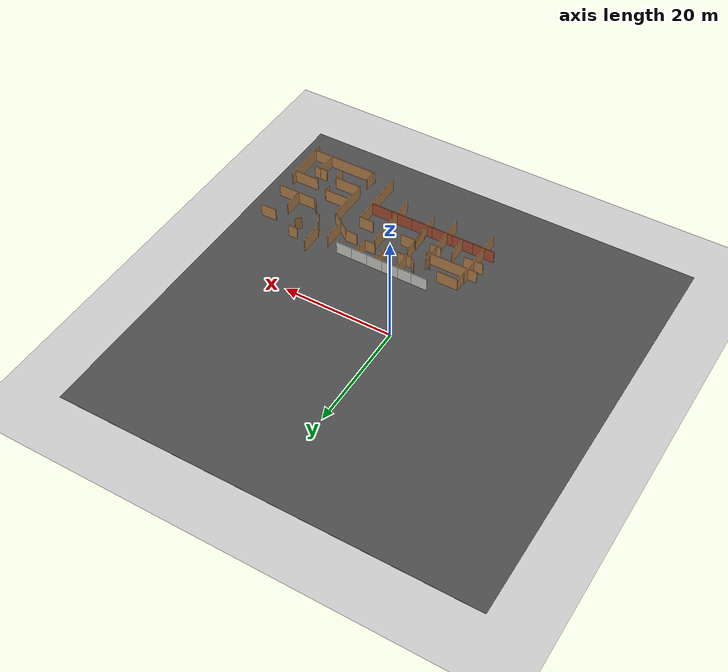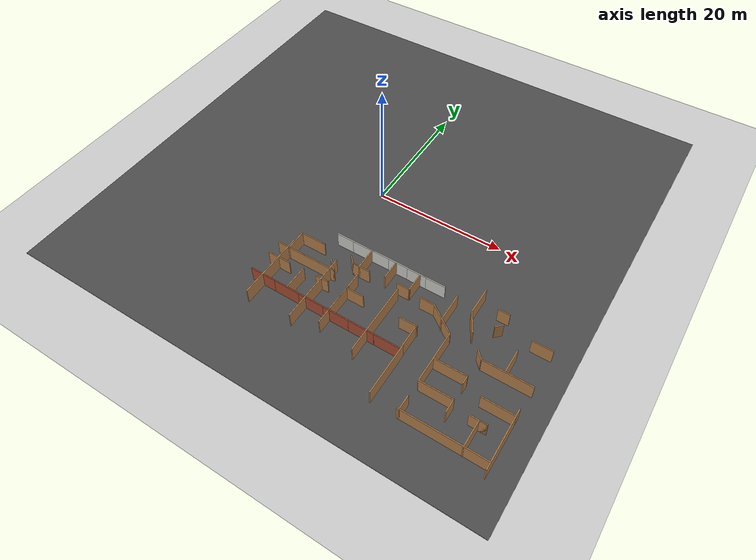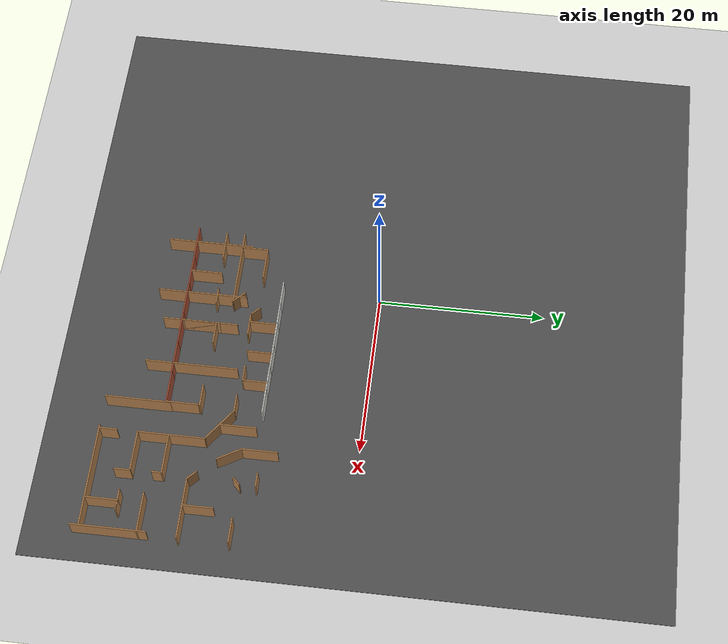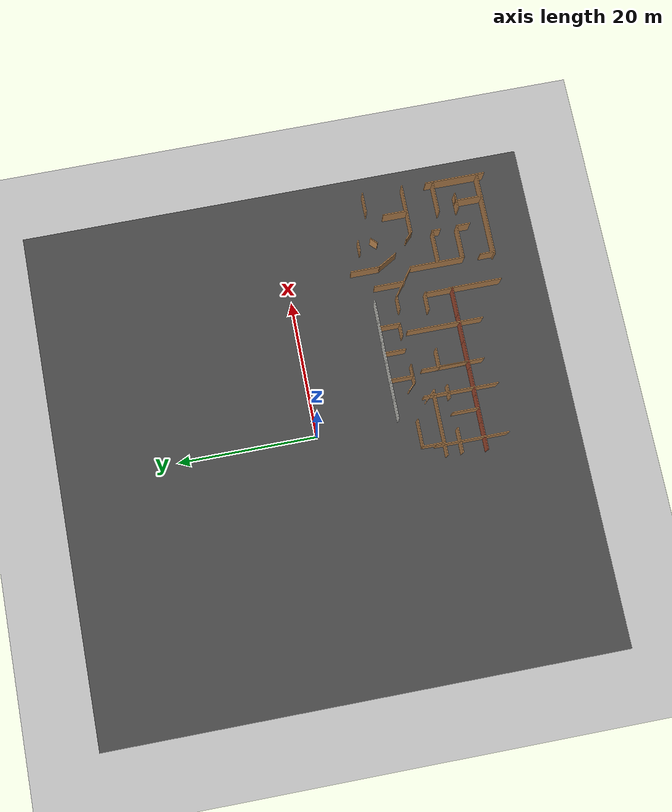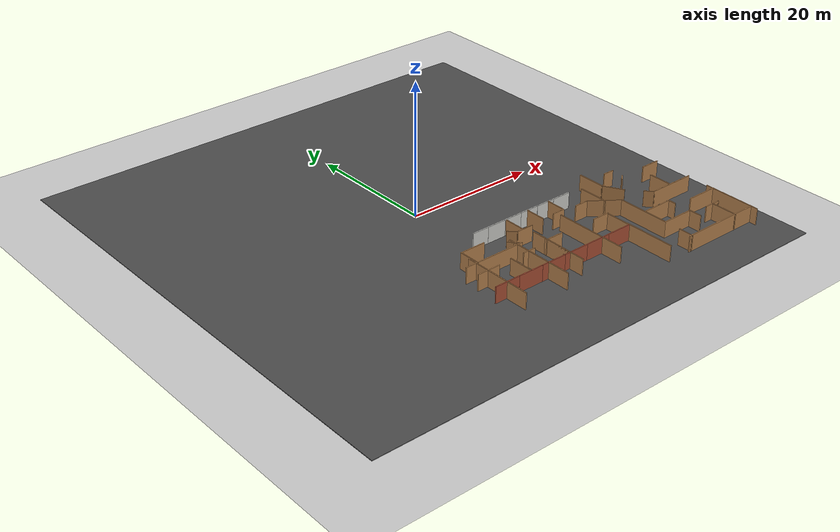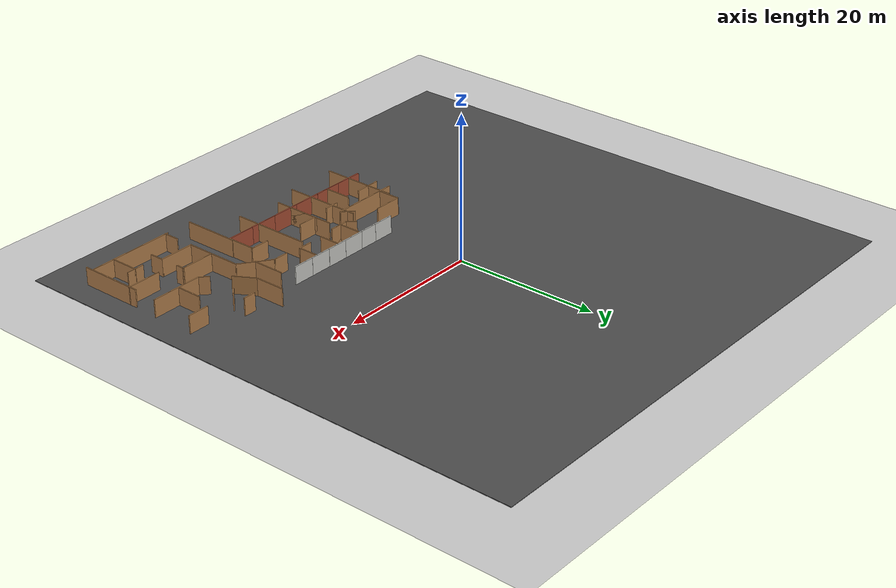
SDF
<sdf version="1.6">
 <world name="default">
  <model name="ground_plane">
   <static>1</static>
   <link name="link">
    <collision name="collision">
     <geometry><plane><normal>0 0 1</normal><size>100 100</size></plane></geometry>
     <surface><friction><ode><mu>100</mu><mu2>50</mu2></ode></friction></surface>
    </collision>
    <visual name="visual">
     <cast_shadows>0</cast_shadows>
     <geometry><plane><normal>0 0 1</normal><size>100 100</size></plane></geometry>
     <material>
      <script><uri>file://media/materials/scripts/gazebo.material</uri><name>Gazebo/Grey</name></script>
     </material>
    </visual>
   </link>
  </model>
  <model name="asphalt_plane">
   <static>1</static>
   <link name="link">
    <collision name="collision"><geometry><box><size>74 74 0.1</size></box></geometry></collision>
    <visual name="visual">
     <cast_shadows>0</cast_shadows>
     <geometry><box><size>74 74 0.1</size></box></geometry>
     <material>
      <script>
       <uri>model://asphalt_plane/materials/scripts</uri>
       <uri>model://asphalt_plane/materials/textures</uri>
       <name>vrc/asphalt</name>
      </script>
     </material>
    </visual>
   </link>
  </model>
  <model name="concrete_wall_6_clone_2">
   <pose>15.9847 -11.7109 0 0 -0 1.57079</pose>
   <link name="Wall_0">
    <collision name="Wall_0_Collision">
     <geometry><box><size>3 0.15 2.5</size></box></geometry>
     <pose>0 0 1.25 0 -0 0</pose>
    </collision>
    <visual name="Wall_0_Visual">
     <pose>0 0 1.25 0 -0 0</pose>
     <geometry><box><size>3 0.15 2.5</size></box></geometry>
     <material>
      <script><uri>file://media/materials/scripts/gazebo.material</uri><name>Gazebo/CeilingTiled</name></script>
      <ambient>1 1 1 1</ambient>
     </material>
     <meta><layer>0</layer></meta>
    </visual>
    <pose>0 0 0 0 -0 1.5708</pose>
   </link>
   <static>1</static>
  </model>
  <model name="concrete_wall_6_clone_3">
   <pose>13.0011 -11.6986 0 0 -0 1.57079</pose>
   <link name="Wall_0">
    <collision name="Wall_0_Collision">
     <geometry><box><size>3 0.15 2.5</size></box></geometry>
     <pose>0 0 1.25 0 -0 0</pose>
    </collision>
    <visual name="Wall_0_Visual">
     <pose>0 0 1.25 0 -0 0</pose>
     <geometry><box><size>3 0.15 2.5</size></box></geometry>
     <material>
      <script><uri>file://media/materials/scripts/gazebo.material</uri><name>Gazebo/CeilingTiled</name></script>
      <ambient>1 1 1 1</ambient>
     </material>
     <meta><layer>0</layer></meta>
    </visual>
    <pose>0 0 0 0 -0 1.5708</pose>
   </link>
   <static>1</static>
  </model>
  <model name="willowgarage_v1_1">
   <pose>-14.3408 -3.86286 0 0 -0 0</pose>
   <link name="Wall_234">
    <collision name="Wall_234_Collision">
     <geometry><box><size>7.75 0.15 2.5</size></box></geometry>
     <pose>0 0 1.25 0 -0 0</pose>
    </collision>
    <visual name="Wall_234_Visual">
     <pose>0 0 1.25 0 -0 0</pose>
     <geometry><box><size>7.75 0.15 2.5</size></box></geometry>
     <material>
      <script><uri>file://media/materials/scripts/gazebo.material</uri><name>Gazebo/Wood</name></script>
      <ambient>1 1 1 1</ambient>
     </material>
     <meta><layer>0</layer></meta>
    </visual>
    <pose>13.7458 -13.5128 0 0 -0 3.14159</pose>
   </link>
   <link name="Wall_235">
    <collision name="Wall_235_Collision">
     <geometry><box><size>3.25 0.15 2.5</size></box></geometry>
     <pose>0 0 1.25 0 -0 0</pose>
    </collision>
    <visual name="Wall_235_Visual">
     <pose>0 0 1.25 0 -0 0</pose>
     <geometry><box><size>3.25 0.15 2.5</size></box></geometry>
     <material>
      <script><uri>file://media/materials/scripts/gazebo.material</uri><name>Gazebo/Wood</name></script>
      <ambient>1 1 1 1</ambient>
     </material>
     <meta><layer>0</layer></meta>
    </visual>
    <pose>9.94576 -11.9628 0 0 -0 1.5708</pose>
   </link>
   <link name="Wall_236">
    <collision name="Wall_236_Collision">
     <geometry><box><size>4 0.15 2.5</size></box></geometry>
     <pose>0 0 1.25 0 -0 0</pose>
    </collision>
    <visual name="Wall_236_Visual">
     <pose>0 0 1.25 0 -0 0</pose>
     <geometry><box><size>4 0.15 2.5</size></box></geometry>
     <material>
      <script><uri>file://media/materials/scripts/gazebo.material</uri><name>Gazebo/Wood</name></script>
      <ambient>1 1 1 1</ambient>
     </material>
     <meta><layer>0</layer></meta>
    </visual>
    <pose>11.8708 -10.4128 0 0 -0 0</pose>
   </link>
   <link name="Wall_238">
    <collision name="Wall_238_Collision">
     <geometry><box><size>2 0.15 2.5</size></box></geometry>
     <pose>0 0 1.25 0 -0 0</pose>
    </collision>
    <visual name="Wall_238_Visual">
     <pose>0 0 1.25 0 -0 0</pose>
     <geometry><box><size>2 0.15 2.5</size></box></geometry>
     <material>
      <script><uri>file://media/materials/scripts/gazebo.material</uri><name>Gazebo/Wood</name></script>
      <ambient>1 1 1 1</ambient>
     </material>
     <meta><layer>0</layer></meta>
    </visual>
    <pose>16.8917 -12.8587 0 0 -0 2.35619</pose>
   </link>
   <link name="Wall_249">
    <collision name="Wall_249_Collision">
     <geometry><box><size>2 0.15 2.5</size></box></geometry>
     <pose>0 0 1.25 0 -0 0</pose>
    </collision>
    <visual name="Wall_249_Visual">
     <pose>0 0 1.25 0 -0 0</pose>
     <geometry><box><size>2 0.15 2.5</size></box></geometry>
     <material>
      <script><uri>file://media/materials/scripts/gazebo.material</uri><name>Gazebo/Wood</name></script>
      <ambient>1 1 1 1</ambient>
     </material>
     <meta><layer>0</layer></meta>
    </visual>
    <pose>9.02075 -13.5128 0 0 -0 3.14159</pose>
   </link>
   <link name="Wall_27">
    <collision name="Wall_27_Collision">
     <geometry><box><size>3.75 0.15 2.5</size></box></geometry>
     <pose>0 0 1.25 0 -0 0</pose>
    </collision>
    <visual name="Wall_27_Visual">
     <pose>0 0 1.25 0 -0 0</pose>
     <geometry><box><size>3.75 0.15 2.5</size></box></geometry>
     <material>
      <script><uri>file://media/materials/scripts/gazebo.material</uri><name>Gazebo/Wood</name></script>
      <ambient>1 1 1 1</ambient>
     </material>
     <meta><layer>0</layer></meta>
    </visual>
    <pose>31.6466 -17.2514 0 0 -0 1.5708</pose>
   </link>
   <link name="Wall_29">
    <collision name="Wall_29_Collision">
     <geometry><box><size>2.75 0.15 2.5</size></box></geometry>
     <pose>0 0 1.25 0 -0 0</pose>
    </collision>
    <visual name="Wall_29_Visual">
     <pose>0 0 1.25 0 -0 0</pose>
     <geometry><box><size>2.75 0.15 2.5</size></box></geometry>
     <material>
      <script><uri>file://media/materials/scripts/gazebo.material</uri><name>Gazebo/Wood</name></script>
      <ambient>1 1 1 1</ambient>
     </material>
     <meta><layer>0</layer></meta>
    </visual>
    <pose>30.4285 -15.2148 0 0 -0 3.14159</pose>
   </link>
   <link name="Wall_31">
    <collision name="Wall_31_Collision">
     <geometry><box><size>11 0.15 2.5</size></box></geometry>
     <pose>0 0 1.25 0 -0 0</pose>
    </collision>
    <visual name="Wall_31_Visual">
     <pose>0 0 1.25 0 -0 0</pose>
     <geometry><box><size>11 0.15 2.5</size></box></geometry>
     <material>
      <script><uri>file://media/materials/scripts/gazebo.material</uri><name>Gazebo/Wood</name></script>
      <ambient>1 1 1 1</ambient>
     </material>
     <meta><layer>0</layer></meta>
    </visual>
    <pose>26.5818 -17.0462 0 0 0 -1.5708</pose>
   </link>
   <link name="Wall_33">
    <collision name="Wall_33_Collision">
     <geometry><box><size>2.75 0.15 2.5</size></box></geometry>
     <pose>0 0 1.25 0 -0 0</pose>
    </collision>
    <visual name="Wall_33_Visual">
     <pose>0 0 1.25 0 -0 0</pose>
     <geometry><box><size>2.75 0.15 2.5</size></box></geometry>
     <material>
      <script><uri>file://media/materials/scripts/gazebo.material</uri><name>Gazebo/Wood</name></script>
      <ambient>1 1 1 1</ambient>
     </material>
     <meta><layer>0</layer></meta>
    </visual>
    <pose>22.0066 -15.0276 0 0 -0 3.14159</pose>
   </link>
   <link name="Wall_34">
    <collision name="Wall_34_Collision">
     <geometry><box><size>4 0.15 2.5</size></box></geometry>
     <pose>0 0 1.25 0 -0 0</pose>
    </collision>
    <visual name="Wall_34_Visual">
     <pose>0 0 1.25 0 -0 0</pose>
     <geometry><box><size>4 0.15 2.5</size></box></geometry>
     <material>
      <script><uri>file://media/materials/scripts/gazebo.material</uri><name>Gazebo/Wood</name></script>
      <ambient>1 1 1 1</ambient>
     </material>
     <meta><layer>0</layer></meta>
    </visual>
    <pose>20.7066 -16.9526 0 0 0 -1.5708</pose>
   </link>
   <link name="Wall_3411">
    <collision name="Wall_3411_Collision">
     <geometry><box><size>9 0.15 2.5</size></box></geometry>
     <pose>0 0 1.25 0 -0 0</pose>
    </collision>
    <visual name="Wall_3411_Visual">
     <pose>0 0 1.25 0 -0 0</pose>
     <geometry><box><size>9 0.15 2.5</size></box></geometry>
     <material>
      <script><uri>file://media/materials/scripts/gazebo.material</uri><name>Gazebo/Wood</name></script>
      <ambient>1 1 1 1</ambient>
     </material>
     <meta><layer>0</layer></meta>
    </visual>
    <pose>20.7066 -16.9526 0 0 0 -1.5708</pose>
   </link>
   <link name="Wall_5511">
    <collision name="Wall_5511_Collision">
     <geometry><box><size>9 0.15 2.5</size></box></geometry>
     <pose>0 0 1.25 0 -0 0</pose>
    </collision>
    <visual name="Wall_5511_Visual">
     <pose>0 0 1.25 0 -0 0</pose>
     <geometry><box><size>9 0.15 2.5</size></box></geometry>
     <material>
      <script><uri>file://media/materials/scripts/gazebo.material</uri><name>Gazebo/Wood</name></script>
      <ambient>1 1 1 1</ambient>
     </material>
     <meta><layer>0</layer></meta>
    </visual>
    <pose>20.7066 -16.9526 0 0 0 -1.5708</pose>
   </link>
   <link name="Wall_4711">
    <collision name="Wall_4711_Collision">
     <geometry><box><size>9 0.15 2.5</size></box></geometry>
     <pose>0 0 1.25 0 -0 0</pose>
    </collision>
    <visual name="Wall_4711_Visual">
     <pose>0 0 1.25 0 -0 0</pose>
     <geometry><box><size>9 0.15 2.5</size></box></geometry>
     <material>
      <script><uri>file://media/materials/scripts/gazebo.material</uri><name>Gazebo/Wood</name></script>
      <ambient>1 1 1 1</ambient>
     </material>
     <meta><layer>0</layer></meta>
    </visual>
    <pose>20.7066 -16.9526 0 0 0 -1.5708</pose>
   </link>
   <link name="Wall_6411">
    <collision name="Wall_6411_Collision">
     <geometry><box><size>9 0.15 2.5</size></box></geometry>
     <pose>0 0 1.25 0 -0 0</pose>
    </collision>
    <visual name="Wall_6411_Visual">
     <pose>0 0 1.25 0 -0 0</pose>
     <geometry><box><size>9 0.15 2.5</size></box></geometry>
     <material>
      <script><uri>file://media/materials/scripts/gazebo.material</uri><name>Gazebo/Wood</name></script>
      <ambient>1 1 1 1</ambient>
     </material>
     <meta><layer>0</layer></meta>
    </visual>
    <pose>20.7066 -16.9526 0 0 0 -1.5708</pose>
   </link>
   <link name="Wall_40811">
    <collision name="Wall_40811_Collision">
     <geometry><box><size>4.7 0.15 2.5</size></box></geometry>
     <pose>0 0 1.25 0 -0 0</pose>
    </collision>
    <visual name="Wall_40811_Visual">
     <pose>0 0 1.25 0 -0 0</pose>
     <geometry><box><size>4.7 0.15 2.5</size></box></geometry>
     <material>
      <script><uri>file://media/materials/scripts/gazebo.material</uri><name>Gazebo/Wood</name></script>
      <ambient>1 1 1 1</ambient>
     </material>
     <meta><layer>0</layer></meta>
    </visual>
    <pose>20.7066 -16.9526 0 0 0 -1.5708</pose>
   </link>
   <link name="Wall_345">
    <collision name="Wall_345_Collision">
     <geometry><box><size>7.75 0.15 2.5</size></box></geometry>
     <pose>0 0 1.25 0 -0 0</pose>
    </collision>
    <visual name="Wall_345_Visual">
     <pose>0 0 1.25 0 -0 0</pose>
     <geometry><box><size>7.75 0.15 2.5</size></box></geometry>
     <material>
      <script><uri>file://media/materials/scripts/gazebo.material</uri><name>Gazebo/Wood</name></script>
      <ambient>1 1 1 1</ambient>
     </material>
     <meta><layer>0</layer></meta>
    </visual>
    <pose>31.7218 -22.5131 0 0 0 -1.5708</pose>
   </link>
   <link name="Wall_347">
    <collision name="Wall_347_Collision">
     <geometry><box><size>12.5 0.15 2.5</size></box></geometry>
     <pose>0 0 1.25 0 -0 0</pose>
    </collision>
    <visual name="Wall_347_Visual">
     <pose>0 0 1.25 0 -0 0</pose>
     <geometry><box><size>12.5 0.15 2.5</size></box></geometry>
     <material>
      <script><uri>file://media/materials/scripts/gazebo.material</uri><name>Gazebo/Wood</name></script>
      <ambient>1 1 1 1</ambient>
     </material>
     <meta><layer>0</layer></meta>
    </visual>
    <pose>41.7212 -26.2805 0 0 -0 0</pose>
   </link>
   <link name="Wall_348">
    <collision name="Wall_348_Collision">
     <geometry><box><size>8.75 0.15 2.5</size></box></geometry>
     <pose>0 0 1.25 0 -0 0</pose>
    </collision>
    <visual name="Wall_348_Visual">
     <pose>0 0 1.25 0 -0 0</pose>
     <geometry><box><size>8.75 0.15 2.5</size></box></geometry>
     <material>
      <script><uri>file://media/materials/scripts/gazebo.material</uri><name>Gazebo/Wood</name></script>
      <ambient>1 1 1 1</ambient>
     </material>
     <meta><layer>0</layer></meta>
    </visual>
    <pose>47.8962 -22.9805 0 0 -0 1.5708</pose>
   </link>
   <link name="Wall_355">
    <collision name="Wall_355_Collision">
     <geometry><box><size>4.25 0.15 2.5</size></box></geometry>
     <pose>0 0 1.25 0 -0 0</pose>
    </collision>
    <visual name="Wall_355_Visual">
     <pose>0 0 1.25 0 -0 0</pose>
     <geometry><box><size>4.25 0.15 2.5</size></box></geometry>
     <material>
      <script><uri>file://media/materials/scripts/gazebo.material</uri><name>Gazebo/Wood</name></script>
      <ambient>1 1 1 1</ambient>
     </material>
     <meta><layer>0</layer></meta>
    </visual>
    <pose>36.6763 -7.42735 0 0 0 -1.5708</pose>
   </link>
   <link name="Wall_356">
    <collision name="Wall_356_Collision">
     <geometry><box><size>3.25 0.15 2.5</size></box></geometry>
     <pose>0 0 1.25 0 -0 0</pose>
    </collision>
    <visual name="Wall_356_Visual">
     <pose>0 0 1.25 0 -0 0</pose>
     <geometry><box><size>3.25 0.15 2.5</size></box></geometry>
     <material>
      <script><uri>file://media/materials/scripts/gazebo.material</uri><name>Gazebo/Wood</name></script>
      <ambient>1 1 1 1</ambient>
     </material>
     <meta><layer>0</layer></meta>
    </visual>
    <pose>37.4513 -10.8197 0 0 0 -1.0472</pose>
   </link>
   <link name="Wall_35512">
    <collision name="Wall_35512_Collision">
     <geometry><box><size>4.25 0.15 2.5</size></box></geometry>
     <pose>0 0 1.25 0 -0 0</pose>
    </collision>
    <visual name="Wall_35512_Visual">
     <pose>0 0 1.25 0 -0 0</pose>
     <geometry><box><size>4.25 0.15 2.5</size></box></geometry>
     <material>
      <script><uri>file://media/materials/scripts/gazebo.material</uri><name>Gazebo/Wood</name></script>
      <ambient>1 1 1 1</ambient>
     </material>
     <meta><layer>0</layer></meta>
    </visual>
    <pose>36.6763 -7.42735 0 0 0 -1.5708</pose>
   </link>
   <link name="Wall_35612">
    <collision name="Wall_35612_Collision">
     <geometry><box><size>3.25 0.15 2.5</size></box></geometry>
     <pose>0 0 1.25 0 -0 0</pose>
    </collision>
    <visual name="Wall_35612_Visual">
     <pose>0 0 1.25 0 -0 0</pose>
     <geometry><box><size>3.25 0.15 2.5</size></box></geometry>
     <material>
      <script><uri>file://media/materials/scripts/gazebo.material</uri><name>Gazebo/Wood</name></script>
      <ambient>1 1 1 1</ambient>
     </material>
     <meta><layer>0</layer></meta>
    </visual>
    <pose>37.4513 -10.8197 0 0 0 -1.0472</pose>
   </link>
   <link name="Wall_35511">
    <collision name="Wall_35511_Collision">
     <geometry><box><size>4.25 0.15 2.5</size></box></geometry>
     <pose>0 0 1.25 0 -0 0</pose>
    </collision>
    <visual name="Wall_35511_Visual">
     <pose>0 0 1.25 0 -0 0</pose>
     <geometry><box><size>4.25 0.15 2.5</size></box></geometry>
     <material>
      <script><uri>file://media/materials/scripts/gazebo.material</uri><name>Gazebo/Wood</name></script>
      <ambient>1 1 1 1</ambient>
     </material>
     <meta><layer>0</layer></meta>
    </visual>
    <pose>36.6763 -7.42735 0 0 0 -1.5708</pose>
   </link>
   <link name="Wall_35611">
    <collision name="Wall_35611_Collision">
     <geometry><box><size>3.25 0.15 2.5</size></box></geometry>
     <pose>0 0 1.25 0 -0 0</pose>
    </collision>
    <visual name="Wall_35611_Visual">
     <pose>0 0 1.25 0 -0 0</pose>
     <geometry><box><size>3.25 0.15 2.5</size></box></geometry>
     <material>
      <script><uri>file://media/materials/scripts/gazebo.material</uri><name>Gazebo/Wood</name></script>
      <ambient>1 1 1 1</ambient>
     </material>
     <meta><layer>0</layer></meta>
    </visual>
    <pose>37.4513 -10.8197 0 0 0 -1.0472</pose>
   </link>
   <link name="Wall_358">
    <collision name="Wall_358_Collision">
     <geometry><box><size>7.25 0.15 2.5</size></box></geometry>
     <pose>0 0 1.25 0 -0 0</pose>
    </collision>
    <visual name="Wall_358_Visual">
     <pose>0 0 1.25 0 -0 0</pose>
     <geometry><box><size>7.25 0.15 2.5</size></box></geometry>
     <material>
      <script><uri>file://media/materials/scripts/gazebo.material</uri><name>Gazebo/Wood</name></script>
      <ambient>1 1 1 1</ambient>
     </material>
     <meta><layer>0</layer></meta>
    </visual>
    <pose>44.5601 -15.1321 0 0 -0 3.14159</pose>
   </link>
   <link name="Wall_359">
    <collision name="Wall_359_Collision">
     <geometry><box><size>1.5 0.15 2.5</size></box></geometry>
     <pose>0 0 1.25 0 -0 0</pose>
    </collision>
    <visual name="Wall_359_Visual">
     <pose>0 0 1.25 0 -0 0</pose>
     <geometry><box><size>1.5 0.15 2.5</size></box></geometry>
     <material>
      <script><uri>file://media/materials/scripts/gazebo.material</uri><name>Gazebo/Wood</name></script>
      <ambient>1 1 1 1</ambient>
     </material>
     <meta><layer>0</layer></meta>
    </visual>
    <pose>40.5328 -14.6548 0 0 -0 2.35619</pose>
   </link>
   <link name="Wall_367">
    <collision name="Wall_367_Collision">
     <geometry><box><size>3 0.15 2.5</size></box></geometry>
     <pose>0 0 1.25 0 -0 0</pose>
    </collision>
    <visual name="Wall_367_Visual">
     <pose>0 0 1.25 0 -0 0</pose>
     <geometry><box><size>3 0.15 2.5</size></box></geometry>
     <material>
      <script><uri>file://media/materials/scripts/gazebo.material</uri><name>Gazebo/Wood</name></script>
      <ambient>1 1 1 1</ambient>
     </material>
     <meta><layer>0</layer></meta>
    </visual>
    <pose>46.6523 -9.27408 0 0 -0 3.14159</pose>
   </link>
   <link name="Wall_371">
    <collision name="Wall_371_Collision">
     <geometry><box><size>3.5 0.15 2.5</size></box></geometry>
     <pose>0 0 1.25 0 -0 0</pose>
    </collision>
    <visual name="Wall_371_Visual">
     <pose>0 0 1.25 0 -0 0</pose>
     <geometry><box><size>3.5 0.15 2.5</size></box></geometry>
     <material>
      <script><uri>file://media/materials/scripts/gazebo.material</uri><name>Gazebo/Wood</name></script>
      <ambient>1 1 1 1</ambient>
     </material>
     <meta><layer>0</layer></meta>
    </visual>
    <pose>44.2528 -13.3088 0 0 0 -1.5708</pose>
   </link>
   <link name="Wall_375">
    <collision name="Wall_375_Collision">
     <geometry><box><size>1.25 0.15 2.5</size></box></geometry>
     <pose>0 0 1.25 0 -0 0</pose>
    </collision>
    <visual name="Wall_375_Visual">
     <pose>0 0 1.25 0 -0 0</pose>
     <geometry><box><size>1.25 0.15 2.5</size></box></geometry>
     <material>
      <script><uri>file://media/materials/scripts/gazebo.material</uri><name>Gazebo/Wood</name></script>
      <ambient>1 1 1 1</ambient>
     </material>
     <meta><layer>0</layer></meta>
    </visual>
    <pose>40.6715 -9.51271 0 0 0 -2.35619</pose>
   </link>
   <link name="Wall_377">
    <collision name="Wall_377_Collision">
     <geometry><box><size>1.75 0.15 2.5</size></box></geometry>
     <pose>0 0 1.25 0 -0 0</pose>
    </collision>
    <visual name="Wall_377_Visual">
     <pose>0 0 1.25 0 -0 0</pose>
     <geometry><box><size>1.75 0.15 2.5</size></box></geometry>
     <material>
      <script><uri>file://media/materials/scripts/gazebo.material</uri><name>Gazebo/Wood</name></script>
      <ambient>1 1 1 1</ambient>
     </material>
     <meta><layer>0</layer></meta>
    </visual>
    <pose>40.2794 -7.23982 0 0 -0 3.14159</pose>
   </link>
   <link name="Wall_37512">
    <collision name="Wall_37512_Collision">
     <geometry><box><size>1.25 0.15 2.5</size></box></geometry>
     <pose>0 0 1.25 0 -0 0</pose>
    </collision>
    <visual name="Wall_37512_Visual">
     <pose>0 0 1.25 0 -0 0</pose>
     <geometry><box><size>1.25 0.15 2.5</size></box></geometry>
     <material>
      <script><uri>file://media/materials/scripts/gazebo.material</uri><name>Gazebo/Wood</name></script>
      <ambient>1 1 1 1</ambient>
     </material>
     <meta><layer>0</layer></meta>
    </visual>
    <pose>40.6715 -9.51271 0 0 0 -2.35619</pose>
   </link>
   <link name="Wall_37712">
    <collision name="Wall_37712_Collision">
     <geometry><box><size>1.75 0.15 2.5</size></box></geometry>
     <pose>0 0 1.25 0 -0 0</pose>
    </collision>
    <visual name="Wall_37712_Visual">
     <pose>0 0 1.25 0 -0 0</pose>
     <geometry><box><size>1.75 0.15 2.5</size></box></geometry>
     <material>
      <script><uri>file://media/materials/scripts/gazebo.material</uri><name>Gazebo/Wood</name></script>
      <ambient>1 1 1 1</ambient>
     </material>
     <meta><layer>0</layer></meta>
    </visual>
    <pose>40.2794 -7.23982 0 0 -0 3.14159</pose>
   </link>
   <link name="Wall_37511">
    <collision name="Wall_37511_Collision">
     <geometry><box><size>1.25 0.15 2.5</size></box></geometry>
     <pose>0 0 1.25 0 -0 0</pose>
    </collision>
    <visual name="Wall_37511_Visual">
     <pose>0 0 1.25 0 -0 0</pose>
     <geometry><box><size>1.25 0.15 2.5</size></box></geometry>
     <material>
      <script><uri>file://media/materials/scripts/gazebo.material</uri><name>Gazebo/Wood</name></script>
      <ambient>1 1 1 1</ambient>
     </material>
     <meta><layer>0</layer></meta>
    </visual>
    <pose>40.6715 -9.51271 0 0 0 -2.35619</pose>
   </link>
   <link name="Wall_37711">
    <collision name="Wall_37711_Collision">
     <geometry><box><size>1.75 0.15 2.5</size></box></geometry>
     <pose>0 0 1.25 0 -0 0</pose>
    </collision>
    <visual name="Wall_37711_Visual">
     <pose>0 0 1.25 0 -0 0</pose>
     <geometry><box><size>1.75 0.15 2.5</size></box></geometry>
     <material>
      <script><uri>file://media/materials/scripts/gazebo.material</uri><name>Gazebo/Wood</name></script>
      <ambient>1 1 1 1</ambient>
     </material>
     <meta><layer>0</layer></meta>
    </visual>
    <pose>40.2794 -7.23982 0 0 -0 3.14159</pose>
   </link>
   <link name="Wall_39">
    <collision name="Wall_39_Collision">
     <geometry><box><size>2 0.15 2.5</size></box></geometry>
     <pose>0 0 1.25 0 -0 0</pose>
    </collision>
    <visual name="Wall_39_Visual">
     <pose>0 0 1.25 0 -0 0</pose>
     <geometry><box><size>2 0.15 2.5</size></box></geometry>
     <material>
      <script><uri>file://media/materials/scripts/gazebo.material</uri><name>Gazebo/Wood</name></script>
      <ambient>1 1 1 1</ambient>
     </material>
     <meta><layer>0</layer></meta>
    </visual>
    <pose>16.9837 -15.5301 0 0 -0 3.14159</pose>
   </link>
   <link name="Wall_401">
    <collision name="Wall_401_Collision">
     <geometry><box><size>4.89931 0.15 2.5</size></box></geometry>
     <pose>0 0 1.25 0 -0 0</pose>
    </collision>
    <visual name="Wall_401_Visual">
     <pose>0 0 1.25 0 -0 0</pose>
     <geometry><box><size>4.89931 0.15 2.5</size></box></geometry>
     <material>
      <script><uri>file://media/materials/scripts/gazebo.material</uri><name>Gazebo/Wood</name></script>
      <ambient>1 1 1 1</ambient>
     </material>
     <meta><layer>0</layer></meta>
    </visual>
    <pose>33.9285 -12.5188 0 0 -0 2.51197</pose>
   </link>
   <link name="Wall_403">
    <collision name="Wall_403_Collision">
     <geometry><box><size>4.5 0.15 2.5</size></box></geometry>
     <pose>0 0 1.25 0 -0 0</pose>
    </collision>
    <visual name="Wall_403_Visual">
     <pose>0 0 1.25 0 -0 0</pose>
     <geometry><box><size>4.5 0.15 2.5</size></box></geometry>
     <material>
      <script><uri>file://media/materials/scripts/gazebo.material</uri><name>Gazebo/Wood</name></script>
      <ambient>1 1 1 1</ambient>
     </material>
     <meta><layer>0</layer></meta>
    </visual>
    <pose>33.8949 -10.4592 0 0 0 -1.5708</pose>
   </link>
   <link name="Wall_406">
    <collision name="Wall_406_Collision">
     <geometry><box><size>8 0.15 2.5</size></box></geometry>
     <pose>0 0 1.25 0 -0 0</pose>
    </collision>
    <visual name="Wall_406_Visual">
     <pose>0 0 1.25 0 -0 0</pose>
     <geometry><box><size>8 0.15 2.5</size></box></geometry>
     <material>
      <script><uri>file://media/materials/scripts/gazebo.material</uri><name>Gazebo/Wood</name></script>
      <ambient>1 1 1 1</ambient>
     </material>
     <meta><layer>0</layer></meta>
    </visual>
    <pose>35.8478 -17.8421 0 0 0 -1.5708</pose>
   </link>
   <link name="Wall_407">
    <collision name="Wall_407_Collision">
     <geometry><box><size>5 0.15 2.5</size></box></geometry>
     <pose>0 0 1.25 0 -0 0</pose>
    </collision>
    <visual name="Wall_407_Visual">
     <pose>0 0 1.25 0 -0 0</pose>
     <geometry><box><size>5 0.15 2.5</size></box></geometry>
     <material>
      <script><uri>file://media/materials/scripts/gazebo.material</uri><name>Gazebo/Wood</name></script>
      <ambient>1 1 1 1</ambient>
     </material>
     <meta><layer>0</layer></meta>
    </visual>
    <pose>38.2728 -21.7671 0 0 -0 0</pose>
   </link>
   <link name="Wall_408">
    <collision name="Wall_408_Collision">
     <geometry><box><size>2 0.15 2.5</size></box></geometry>
     <pose>0 0 1.25 0 -0 0</pose>
    </collision>
    <visual name="Wall_408_Visual">
     <pose>0 0 1.25 0 -0 0</pose>
     <geometry><box><size>2 0.15 2.5</size></box></geometry>
     <material>
      <script><uri>file://media/materials/scripts/gazebo.material</uri><name>Gazebo/Wood</name></script>
      <ambient>1 1 1 1</ambient>
     </material>
     <meta><layer>0</layer></meta>
    </visual>
    <pose>40.6978 -22.6921 0 0 0 -1.5708</pose>
   </link>
   <link name="Wall_410">
    <collision name="Wall_410_Collision">
     <geometry><box><size>2.25 0.15 2.5</size></box></geometry>
     <pose>0 0 1.25 0 -0 0</pose>
    </collision>
    <visual name="Wall_410_Visual">
     <pose>0 0 1.25 0 -0 0</pose>
     <geometry><box><size>2.25 0.15 2.5</size></box></geometry>
     <material>
      <script><uri>file://media/materials/scripts/gazebo.material</uri><name>Gazebo/Wood</name></script>
      <ambient>1 1 1 1</ambient>
     </material>
     <meta><layer>0</layer></meta>
    </visual>
    <pose>35.8478 -25.2985 0 0 -0 1.5708</pose>
   </link>
   <link name="Wall_412">
    <collision name="Wall_412_Collision">
     <geometry><box><size>4.75 0.15 2.5</size></box></geometry>
     <pose>0 0 1.25 0 -0 0</pose>
    </collision>
    <visual name="Wall_412_Visual">
     <pose>0 0 1.25 0 -0 0</pose>
     <geometry><box><size>4.75 0.15 2.5</size></box></geometry>
     <material>
      <script><uri>file://media/materials/scripts/gazebo.material</uri><name>Gazebo/Wood</name></script>
      <ambient>1 1 1 1</ambient>
     </material>
     <meta><layer>0</layer></meta>
    </visual>
    <pose>45.5962 -19.6805 0 0 -0 3.14159</pose>
   </link>
   <link name="Wall_414">
    <collision name="Wall_414_Collision">
     <geometry><box><size>4 0.15 2.5</size></box></geometry>
     <pose>0 0 1.25 0 -0 0</pose>
    </collision>
    <visual name="Wall_414_Visual">
     <pose>0 0 1.25 0 -0 0</pose>
     <geometry><box><size>4 0.15 2.5</size></box></geometry>
     <material>
      <script><uri>file://media/materials/scripts/gazebo.material</uri><name>Gazebo/Wood</name></script>
      <ambient>1 1 1 1</ambient>
     </material>
     <meta><layer>0</layer></meta>
    </visual>
    <pose>44.4731 -24.4235 0 0 -0 1.5708</pose>
   </link>
   <link name="Wall_415">
    <collision name="Wall_415_Collision">
     <geometry><box><size>1.25 0.15 2.5</size></box></geometry>
     <pose>0 0 1.25 0 -0 0</pose>
    </collision>
    <visual name="Wall_415_Visual">
     <pose>0 0 1.25 0 -0 0</pose>
     <geometry><box><size>1.25 0.15 2.5</size></box></geometry>
     <material>
      <script><uri>file://media/materials/scripts/gazebo.material</uri><name>Gazebo/Wood</name></script>
      <ambient>1 1 1 1</ambient>
     </material>
     <meta><layer>0</layer></meta>
    </visual>
    <pose>45.0231 -22.4985 0 0 -0 0</pose>
   </link>
   <link name="Wall_416">
    <collision name="Wall_416_Collision">
     <geometry><box><size>2.5 0.15 2.5</size></box></geometry>
     <pose>0 0 1.25 0 -0 0</pose>
    </collision>
    <visual name="Wall_416_Visual">
     <pose>0 0 1.25 0 -0 0</pose>
     <geometry><box><size>2.5 0.15 2.5</size></box></geometry>
     <material>
      <script><uri>file://media/materials/scripts/gazebo.material</uri><name>Gazebo/Wood</name></script>
      <ambient>1 1 1 1</ambient>
     </material>
     <meta><layer>0</layer></meta>
    </visual>
    <pose>44.3981 -22.4985 0 0 -0 3.14159</pose>
   </link>
   <link name="Wall_418">
    <collision name="Wall_418_Collision">
     <geometry><box><size>4.75 0.15 2.5</size></box></geometry>
     <pose>0 0 1.25 0 -0 0</pose>
    </collision>
    <visual name="Wall_418_Visual">
     <pose>0 0 1.25 0 -0 0</pose>
     <geometry><box><size>4.75 0.15 2.5</size></box></geometry>
     <material>
      <script><uri>file://media/materials/scripts/gazebo.material</uri><name>Gazebo/Wood</name></script>
      <ambient>1 1 1 1</ambient>
     </material>
     <meta><layer>0</layer></meta>
    </visual>
    <pose>38.3106 -18.1301 0 0 -0 0</pose>
   </link>
   <link name="Wall_419">
    <collision name="Wall_419_Collision">
     <geometry><box><size>1.25 0.15 2.5</size></box></geometry>
     <pose>0 0 1.25 0 -0 0</pose>
    </collision>
    <visual name="Wall_419_Visual">
     <pose>0 0 1.25 0 -0 0</pose>
     <geometry><box><size>1.25 0.15 2.5</size></box></geometry>
     <material>
      <script><uri>file://media/materials/scripts/gazebo.material</uri><name>Gazebo/Wood</name></script>
      <ambient>1 1 1 1</ambient>
     </material>
     <meta><layer>0</layer></meta>
    </visual>
    <pose>40.6106 -18.6801 0 0 0 -1.5708</pose>
   </link>
   <link name="Wall_43">
    <collision name="Wall_43_Collision">
     <geometry><box><size>10.75 0.15 2.5</size></box></geometry>
     <pose>0 0 1.25 0 -0 0</pose>
    </collision>
    <visual name="Wall_43_Visual">
     <pose>0 0 1.25 0 -0 0</pose>
     <geometry><box><size>10.75 0.15 2.5</size></box></geometry>
     <material>
      <script><uri>file://media/materials/scripts/gazebo.material</uri><name>Gazebo/Wood</name></script>
      <ambient>1 1 1 1</ambient>
     </material>
     <meta><layer>0</layer></meta>
    </visual>
    <pose>16.8679 -17.2949 0 0 -0 1.5708</pose>
   </link>
   <link name="Wall_47">
    <collision name="Wall_47_Collision">
     <geometry><box><size>3.75 0.15 2.5</size></box></geometry>
     <pose>0 0 1.25 0 -0 0</pose>
    </collision>
    <visual name="Wall_47_Visual">
     <pose>0 0 1.25 0 -0 0</pose>
     <geometry><box><size>3.75 0.15 2.5</size></box></geometry>
     <material>
      <script><uri>file://media/materials/scripts/gazebo.material</uri><name>Gazebo/Wood</name></script>
      <ambient>1 1 1 1</ambient>
     </material>
     <meta><layer>0</layer></meta>
    </visual>
    <pose>13.8443 -17.3154 0 0 -0 1.5708</pose>
   </link>
   <link name="Wall_50">
    <collision name="Wall_50_Collision">
     <geometry><box><size>10.5 0.15 2.5</size></box></geometry>
     <pose>0 0 1.25 0 -0 0</pose>
    </collision>
    <visual name="Wall_50_Visual">
     <pose>0 0 1.25 0 -0 0</pose>
     <geometry><box><size>10.5 0.15 2.5</size></box></geometry>
     <material>
      <script><uri>file://media/materials/scripts/gazebo.material</uri><name>Gazebo/Wood</name></script>
      <ambient>1 1 1 1</ambient>
     </material>
     <meta><layer>0</layer></meta>
    </visual>
    <pose>9.72195 -17.3789 0 0 -0 1.5708</pose>
   </link>
   <link name="Wall_51">
    <collision name="Wall_51_Collision">
     <geometry><box><size>2 0.15 2.5</size></box></geometry>
     <pose>0 0 1.25 0 -0 0</pose>
    </collision>
    <visual name="Wall_51_Visual">
     <pose>0 0 1.25 0 -0 0</pose>
     <geometry><box><size>2 0.15 2.5</size></box></geometry>
     <material>
      <script><uri>file://media/materials/scripts/gazebo.material</uri><name>Gazebo/Wood</name></script>
      <ambient>1 1 1 1</ambient>
     </material>
     <meta><layer>0</layer></meta>
    </visual>
    <pose>10.647 -15.7039 0 0 -0 0</pose>
   </link>
   <link name="Wall_53">
    <collision name="Wall_53_Collision">
     <geometry><box><size>1.75 0.15 2.5</size></box></geometry>
     <pose>0 0 1.25 0 -0 0</pose>
    </collision>
    <visual name="Wall_53_Visual">
     <pose>0 0 1.25 0 -0 0</pose>
     <geometry><box><size>1.75 0.15 2.5</size></box></geometry>
     <material>
      <script><uri>file://media/materials/scripts/gazebo.material</uri><name>Gazebo/Wood</name></script>
      <ambient>1 1 1 1</ambient>
     </material>
     <meta><layer>0</layer></meta>
    </visual>
    <pose>8.92195 -15.7039 0 0 -0 3.14159</pose>
   </link>
   <link name="Wall_72">
    <collision name="Wall_72_Collision">
     <geometry><box><size>2.25 0.15 2.5</size></box></geometry>
     <pose>0 0 1.25 0 -0 0</pose>
    </collision>
    <visual name="Wall_72_Visual">
     <pose>0 0 1.25 0 -0 0</pose>
     <geometry><box><size>2.25 0.15 2.5</size></box></geometry>
     <material>
      <script><uri>file://media/materials/scripts/gazebo.material</uri><name>Gazebo/Wood</name></script>
      <ambient>1 1 1 1</ambient>
     </material>
     <meta><layer>0</layer></meta>
    </visual>
    <pose>30.9592 -11.1205 0 0 -0 3.14159</pose>
   </link>
   <link name="Wall_74">
    <collision name="Wall_74_Collision">
     <geometry><box><size>3 0.15 2.5</size></box></geometry>
     <pose>0 0 1.25 0 -0 0</pose>
    </collision>
    <visual name="Wall_74_Visual">
     <pose>0 0 1.25 0 -0 0</pose>
     <geometry><box><size>3 0.15 2.5</size></box></geometry>
     <material>
      <script><uri>file://media/materials/scripts/gazebo.material</uri><name>Gazebo/Wood</name></script>
      <ambient>1 1 1 1</ambient>
     </material>
     <meta><layer>0</layer></meta>
    </visual>
    <pose>27.9198 -9.3165 0 0 0 -1.5708</pose>
   </link>
   <link name="Wall_75">
    <collision name="Wall_75_Collision">
     <geometry><box><size>2 0.15 2.5</size></box></geometry>
     <pose>0 0 1.25 0 -0 0</pose>
    </collision>
    <visual name="Wall_75_Visual">
     <pose>0 0 1.25 0 -0 0</pose>
     <geometry><box><size>2 0.15 2.5</size></box></geometry>
     <material>
      <script><uri>file://media/materials/scripts/gazebo.material</uri><name>Gazebo/Wood</name></script>
      <ambient>1 1 1 1</ambient>
     </material>
     <meta><layer>0</layer></meta>
    </visual>
    <pose>26.9948 -10.7415 0 0 -0 3.14159</pose>
   </link>
   <link name="Wall_77">
    <collision name="Wall_77_Collision">
     <geometry><box><size>3 0.15 2.5</size></box></geometry>
     <pose>0 0 1.25 0 -0 0</pose>
    </collision>
    <visual name="Wall_77_Visual">
     <pose>0 0 1.25 0 -0 0</pose>
     <geometry><box><size>3 0.15 2.5</size></box></geometry>
     <material>
      <script><uri>file://media/materials/scripts/gazebo.material</uri><name>Gazebo/Wood</name></script>
      <ambient>1 1 1 1</ambient>
     </material>
     <meta><layer>0</layer></meta>
    </visual>
    <pose>24.0676 -9.3165 0 0 0 -1.5708</pose>
   </link>
   <link name="Wall_80">
    <collision name="Wall_80_Collision">
     <geometry><box><size>3.25 0.15 2.5</size></box></geometry>
     <pose>0 0 1.25 0 -0 0</pose>
    </collision>
    <visual name="Wall_80_Visual">
     <pose>0 0 1.25 0 -0 0</pose>
     <geometry><box><size>3.25 0.15 2.5</size></box></geometry>
     <material>
      <script><uri>file://media/materials/scripts/gazebo.material</uri><name>Gazebo/Wood</name></script>
      <ambient>1 1 1 1</ambient>
     </material>
     <meta><layer>0</layer></meta>
    </visual>
    <pose>20.1084 -9.5485 0 0 0 -1.5708</pose>
   </link>
   <link name="Wall_81">
    <collision name="Wall_81_Collision">
     <geometry><box><size>1.75 0.15 2.5</size></box></geometry>
     <pose>0 0 1.25 0 -0 0</pose>
    </collision>
    <visual name="Wall_81_Visual">
     <pose>0 0 1.25 0 -0 0</pose>
     <geometry><box><size>1.75 0.15 2.5</size></box></geometry>
     <material>
      <script><uri>file://media/materials/scripts/gazebo.material</uri><name>Gazebo/Wood</name></script>
      <ambient>1 1 1 1</ambient>
     </material>
     <meta><layer>0</layer></meta>
    </visual>
    <pose>20.9084 -11.0985 0 0 -0 0</pose>
   </link>
   <link name="Wall_82">
    <collision name="Wall_82_Collision">
     <geometry><box><size>2.75 0.15 2.5</size></box></geometry>
     <pose>0 0 1.25 0 -0 0</pose>
    </collision>
    <visual name="Wall_82_Visual">
     <pose>0 0 1.25 0 -0 0</pose>
     <geometry><box><size>2.75 0.15 2.5</size></box></geometry>
     <material>
      <script><uri>file://media/materials/scripts/gazebo.material</uri><name>Gazebo/Wood</name></script>
      <ambient>1 1 1 1</ambient>
     </material>
     <meta><layer>0</layer></meta>
    </visual>
    <pose>20.4084 -11.0985 0 0 -0 3.14159</pose>
   </link>
   <link name="Wall_83">
    <collision name="Wall_83_Collision">
     <geometry><box><size>1.5 0.15 2.5</size></box></geometry>
     <pose>0 0 1.25 0 -0 0</pose>
    </collision>
    <visual name="Wall_83_Visual">
     <pose>0 0 1.25 0 -0 0</pose>
     <geometry><box><size>1.5 0.15 2.5</size></box></geometry>
     <material>
      <script><uri>file://media/materials/scripts/gazebo.material</uri><name>Gazebo/Wood</name></script>
      <ambient>1 1 1 1</ambient>
     </material>
     <meta><layer>0</layer></meta>
    </visual>
    <pose>18.6311 -10.6212 0 0 -0 2.35619</pose>
   </link>
   <static>1</static>
  </model>
  <model name="brick_wall_1_clone">
   <pose>15.3646 -23.048 0 0 -0 0</pose>
   <link name="Wall_0">
    <collision name="Wall_0_Collision">
     <geometry><box><size>4 0.15 2.5</size></box></geometry>
     <pose>0 0 1.25 0 -0 0</pose>
    </collision>
    <visual name="Wall_0_Visual">
     <pose>0 0 1.25 0 -0 0</pose>
     <geometry><box><size>4 0.15 2.5</size></box></geometry>
     <material>
      <script><uri>file://media/materials/scripts/gazebo.material</uri><name>Gazebo/Bricks</name></script>
      <ambient>1 1 1 1</ambient>
     </material>
     <meta><layer>0</layer></meta>
    </visual>
   </link>
   <static>1</static>
  </model>
  <model name="brick_wall_1_clone_0">
   <pose>11.3696 -23.0598 0 0 -0 0</pose>
   <link name="Wall_0">
    <collision name="Wall_0_Collision">
     <geometry><box><size>4 0.15 2.5</size></box></geometry>
     <pose>0 0 1.25 0 -0 0</pose>
    </collision>
    <visual name="Wall_0_Visual">
     <pose>0 0 1.25 0 -0 0</pose>
     <geometry><box><size>4 0.15 2.5</size></box></geometry>
     <material>
      <script><uri>file://media/materials/scripts/gazebo.material</uri><name>Gazebo/Bricks</name></script>
      <ambient>1 1 1 1</ambient>
     </material>
     <meta><layer>0</layer></meta>
    </visual>
   </link>
   <static>1</static>
  </model>
  <model name="brick_wall_1_clone_1">
   <pose>7.40463 -23.0648 0 0 -0 0</pose>
   <link name="Wall_0">
    <collision name="Wall_0_Collision">
     <geometry><box><size>4 0.15 2.5</size></box></geometry>
     <pose>0 0 1.25 0 -0 0</pose>
    </collision>
    <visual name="Wall_0_Visual">
     <pose>0 0 1.25 0 -0 0</pose>
     <geometry><box><size>4 0.15 2.5</size></box></geometry>
     <material>
      <script><uri>file://media/materials/scripts/gazebo.material</uri><name>Gazebo/Bricks</name></script>
      <ambient>1 1 1 1</ambient>
     </material>
     <meta><layer>0</layer></meta>
    </visual>
   </link>
   <static>1</static>
  </model>
  <model name="brick_wall_1_clone_2">
   <pose>3.41823 -23.0729 0 0 -0 0</pose>
   <link name="Wall_0">
    <collision name="Wall_0_Collision">
     <geometry><box><size>4 0.15 2.5</size></box></geometry>
     <pose>0 0 1.25 0 -0 0</pose>
    </collision>
    <visual name="Wall_0_Visual">
     <pose>0 0 1.25 0 -0 0</pose>
     <geometry><box><size>4 0.15 2.5</size></box></geometry>
     <material>
      <script><uri>file://media/materials/scripts/gazebo.material</uri><name>Gazebo/Bricks</name></script>
      <ambient>1 1 1 1</ambient>
     </material>
     <meta><layer>0</layer></meta>
    </visual>
   </link>
   <static>1</static>
  </model>
  <model name="brick_wall_1_clone_3">
   <pose>-0.574984 -23.069 0 0 -0 0</pose>
   <link name="Wall_0">
    <collision name="Wall_0_Collision">
     <geometry><box><size>4 0.15 2.5</size></box></geometry>
     <pose>0 0 1.25 0 -0 0</pose>
    </collision>
    <visual name="Wall_0_Visual">
     <pose>0 0 1.25 0 -0 0</pose>
     <geometry><box><size>4 0.15 2.5</size></box></geometry>
     <material>
      <script><uri>file://media/materials/scripts/gazebo.material</uri><name>Gazebo/Bricks</name></script>
      <ambient>1 1 1 1</ambient>
     </material>
     <meta><layer>0</layer></meta>
    </visual>
   </link>
   <static>1</static>
  </model>
  <model name="brick_wall_1_clone_4">
   <pose>-4.54016 -23.0608 0 0 -0 0</pose>
   <link name="Wall_0">
    <collision name="Wall_0_Collision">
     <geometry><box><size>4 0.15 2.5</size></box></geometry>
     <pose>0 0 1.25 0 -0 0</pose>
    </collision>
    <visual name="Wall_0_Visual">
     <pose>0 0 1.25 0 -0 0</pose>
     <geometry><box><size>4 0.15 2.5</size></box></geometry>
     <material>
      <script><uri>file://media/materials/scripts/gazebo.material</uri><name>Gazebo/Bricks</name></script>
      <ambient>1 1 1 1</ambient>
     </material>
     <meta><layer>0</layer></meta>
    </visual>
   </link>
   <static>1</static>
  </model>
  <model name="concrete_wall_6_clone_3_clone">
   <pose>10.0027 -11.6646 0 0 -0 1.57079</pose>
   <link name="Wall_0">
    <collision name="Wall_0_Collision">
     <geometry><box><size>3 0.15 2.5</size></box></geometry>
     <pose>0 0 1.25 0 -0 0</pose>
    </collision>
    <visual name="Wall_0_Visual">
     <pose>0 0 1.25 0 -0 0</pose>
     <geometry><box><size>3 0.15 2.5</size></box></geometry>
     <material>
      <script><uri>file://media/materials/scripts/gazebo.material</uri><name>Gazebo/CeilingTiled</name></script>
      <ambient>1 1 1 1</ambient>
     </material>
     <meta><layer>0</layer></meta>
    </visual>
    <pose>0 0 0 0 -0 1.5708</pose>
   </link>
   <static>1</static>
  </model>
  <model name="concrete_wall_6_clone_3_clone_0">
   <pose>7.03449 -11.6596 0 0 -0 1.57079</pose>
   <link name="Wall_0">
    <collision name="Wall_0_Collision">
     <geometry><box><size>3 0.15 2.5</size></box></geometry>
     <pose>0 0 1.25 0 -0 0</pose>
    </collision>
    <visual name="Wall_0_Visual">
     <pose>0 0 1.25 0 -0 0</pose>
     <geometry><box><size>3 0.15 2.5</size></box></geometry>
     <material>
      <script><uri>file://media/materials/scripts/gazebo.material</uri><name>Gazebo/CeilingTiled</name></script>
      <ambient>1 1 1 1</ambient>
     </material>
     <meta><layer>0</layer></meta>
    </visual>
    <pose>0 0 0 0 -0 1.5708</pose>
   </link>
   <static>1</static>
  </model>
  <model name="concrete_wall_6_clone_3_clone_1">
   <pose>4.09349 -11.6685 0 0 -0 1.57079</pose>
   <link name="Wall_0">
    <collision name="Wall_0_Collision">
     <geometry><box><size>3 0.15 2.5</size></box></geometry>
     <pose>0 0 1.25 0 -0 0</pose>
    </collision>
    <visual name="Wall_0_Visual">
     <pose>0 0 1.25 0 -0 0</pose>
     <geometry><box><size>3 0.15 2.5</size></box></geometry>
     <material>
      <script><uri>file://media/materials/scripts/gazebo.material</uri><name>Gazebo/CeilingTiled</name></script>
      <ambient>1 1 1 1</ambient>
     </material>
     <meta><layer>0</layer></meta>
    </visual>
    <pose>0 0 0 0 -0 1.5708</pose>
   </link>
   <static>1</static>
  </model>
  <model name="concrete_wall_6_clone_3_clone_2">
   <pose>1.45473 -11.6641 0 0 -0 1.57079</pose>
   <link name="Wall_0">
    <collision name="Wall_0_Collision">
     <geometry><box><size>3 0.15 2.5</size></box></geometry>
     <pose>0 0 1.25 0 -0 0</pose>
    </collision>
    <visual name="Wall_0_Visual">
     <pose>0 0 1.25 0 -0 0</pose>
     <geometry><box><size>3 0.15 2.5</size></box></geometry>
     <material>
      <script><uri>file://media/materials/scripts/gazebo.material</uri><name>Gazebo/CeilingTiled</name></script>
      <ambient>1 1 1 1</ambient>
     </material>
     <meta><layer>0</layer></meta>
    </visual>
    <pose>0 0 0 0 -0 1.5708</pose>
   </link>
   <static>1</static>
  </model>
 </world>
</sdf>
